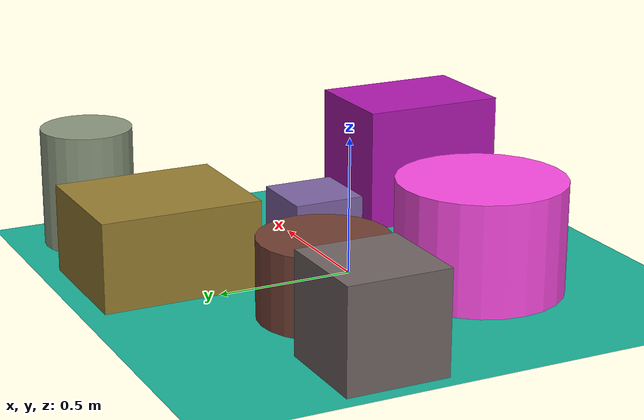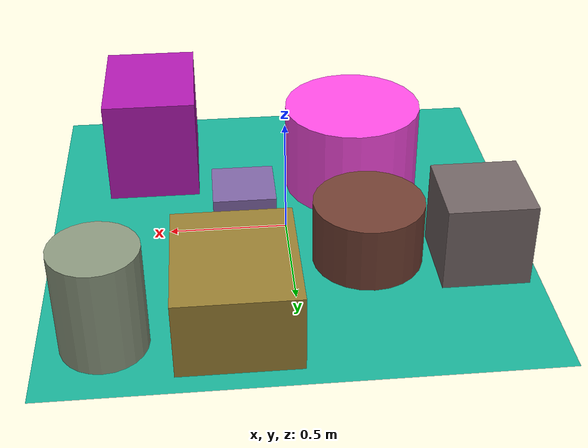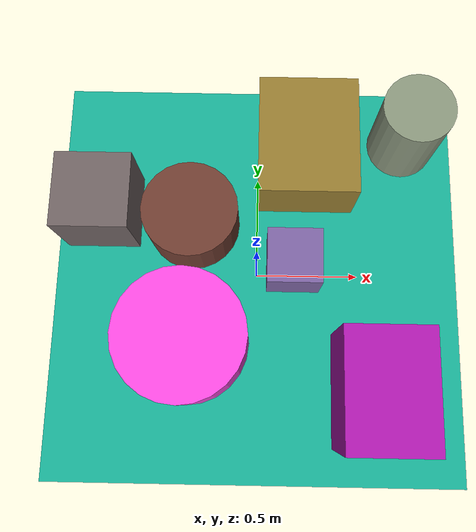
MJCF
<mujoco>
   <asset>
<texture type="skybox" builtin="gradient" rgb1="1.0 0.7 0.3" rgb2="0.2 0.9 0.0" width="256" height="256"/>
<texture name="flat_0" builtin="flat" rgb1="0.7 0.1 0.7" rgb2="0.7 0.1 0.7"  width="200" height="200"/>
<texture name="flat_1" builtin="flat" rgb1="1.0 0.3 0.9" rgb2="1.0 0.3 0.9"  width="200" height="200"/>
<texture name="flat_2" builtin="flat" rgb1="0.6 0.5 0.2" rgb2="0.6 0.5 0.2"  width="200" height="200"/>
<texture name="gradient_3" builtin="gradient" rgb1="0.7 0.4 0.6" rgb2="0.4 0.8 0.4" width="200" height="200"/>
<texture name="gradient_4" builtin="gradient" rgb1="0.4 0.6 0.4" rgb2="0.6 0.2 0.9" width="200" height="200"/>
<texture name="gradient_5" builtin="gradient" rgb1="0.8 0.1 0.3" rgb2="0.1 0.4 0.1" width="200" height="200"/>
<texture name="gradient_6" builtin="gradient" rgb1="0.7 0.8 0.2" rgb2="0.2 0.0 0.6" width="200" height="200"/><material name="flat_0_mat" reflectance="0" texture="flat_0" texuniform="true"/>
<material name="flat_1_mat" reflectance="0" texture="flat_1" texuniform="true"/>
<material name="flat_2_mat" reflectance="0" texture="flat_2" texuniform="true"/>
<material name="gradient_3_mat" reflectance="0" texture="gradient_3" texuniform="true"/>
<material name="gradient_4_mat" reflectance="0" texture="gradient_4" texuniform="true"/>
<material name="gradient_5_mat" reflectance="0" texture="gradient_5" texuniform="true"/>
<material name="gradient_6_mat" reflectance="0" texture="gradient_6" texuniform="true"/>
   </asset>

   <worldbody>
      <light diffuse=".9 .9 .9" pos="0 0 3" dir="0 0 -1"/>
     <geom type="plane" size="1 1 0.1" rgba="0.1 0.7 0.6 1"/>
<geom type="box" pos="0.57 -0.56 0.23" size="0.2 0.27 0.23" material="flat_0_mat" />
<geom type="cylinder" pos="-0.33 -0.34 0.2" size="0.3 0.2 0.2" material="flat_1_mat" />
<geom type="box" pos="0.24 0.63 0.16" size="0.24 0.29 0.16" material="flat_2_mat" />
<geom type="cylinder" pos="0.74 0.71 0.22" size="0.17 0.22 0.22" material="gradient_3_mat" />
<geom type="box" pos="0.18 0.05 0.13" size="0.13 0.13 0.13" material="gradient_4_mat" />
<geom type="cylinder" pos="-0.32 0.26 0.14" size="0.23 0.14 0.14" material="gradient_5_mat" />
<geom type="box" pos="-0.77 0.32 0.18" size="0.18 0.18 0.18" material="gradient_6_mat" /><camera euler="60 0 180" fovy="60" name="camera2" pos="0.1 -1.5 1"></camera>   </worldbody>
</mujoco>
